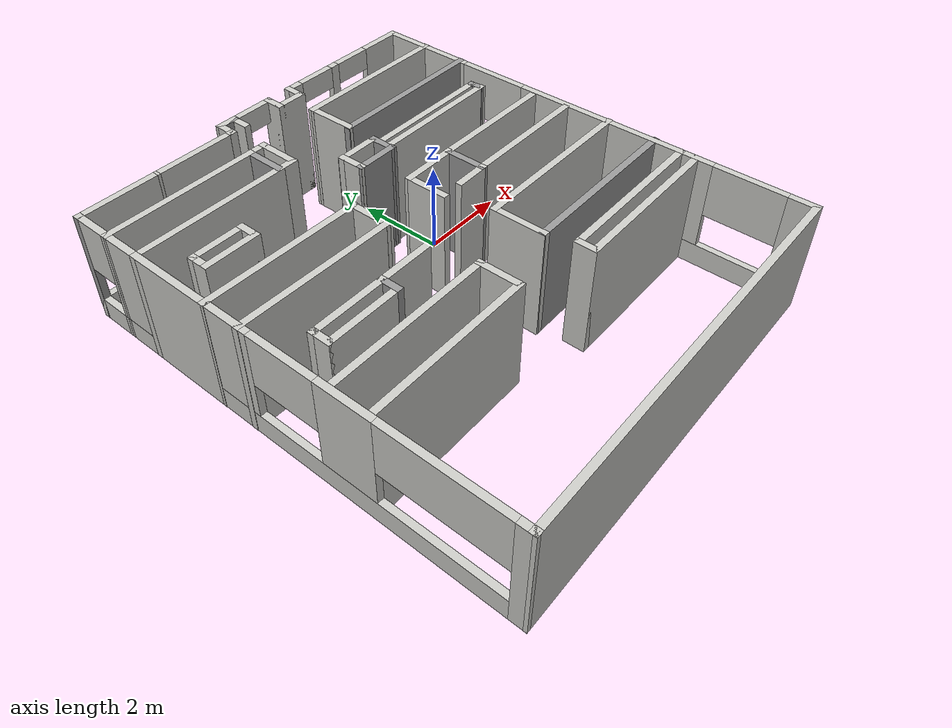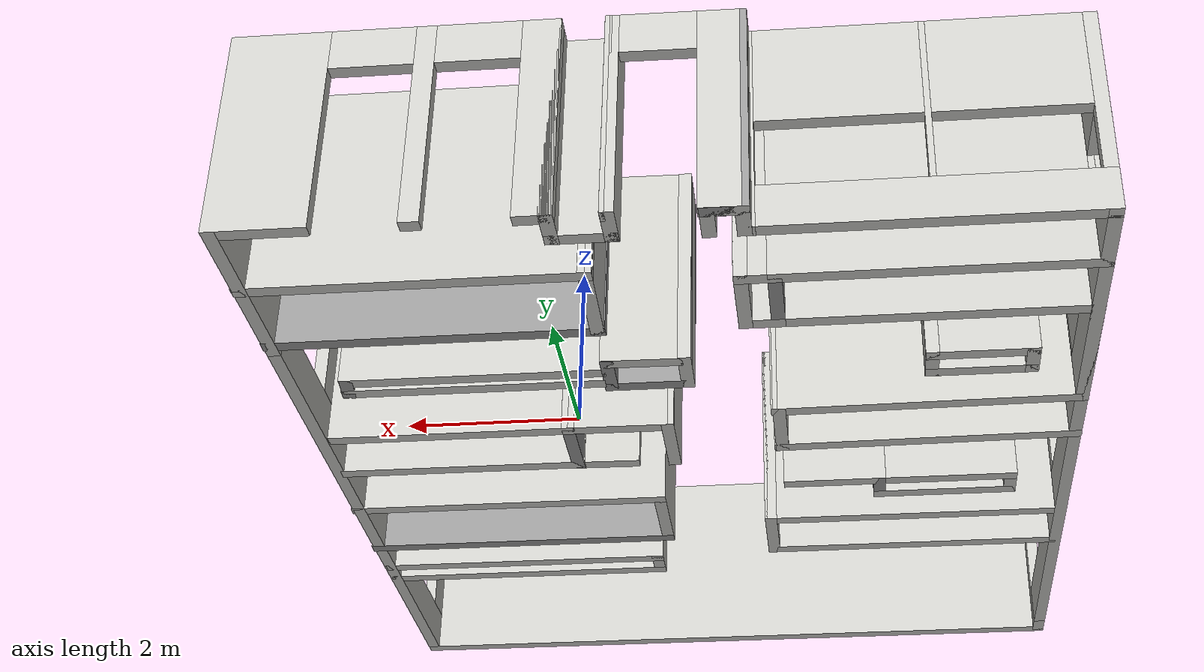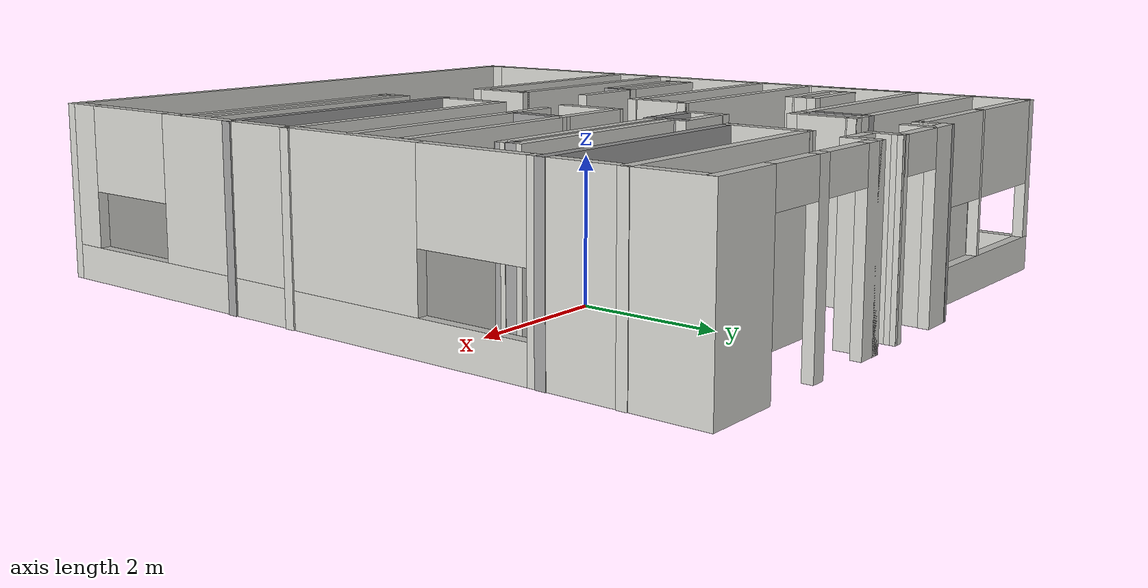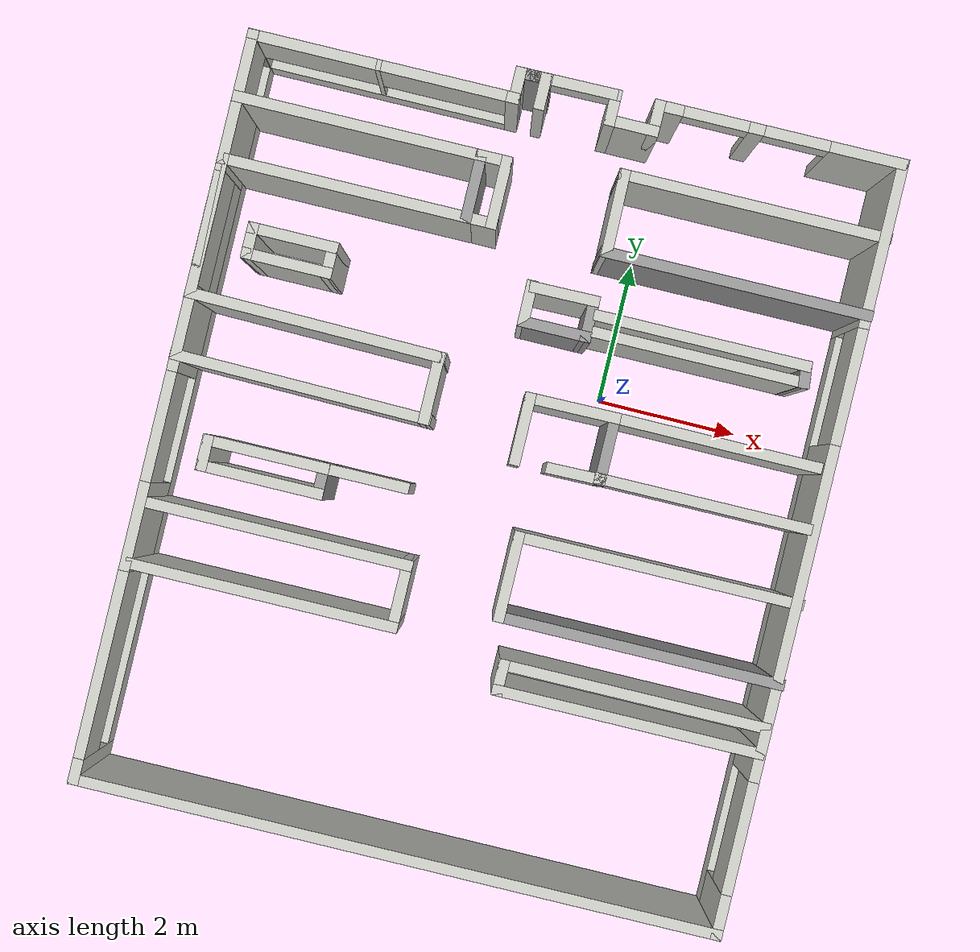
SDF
<?xml version='1.0'?>
<sdf version='1.7'>
  <model name='1CS_Floor_Plan'>
    <pose>-1.30751 -1.3658 0 0 -0 0</pose>
    <link name='Wall_101'>
      <collision name='Wall_101_Collision'>
        <geometry>
          <box>
            <size>1 0.15 2.5</size>
          </box>
        </geometry>
        <pose>0 0 1.25 0 -0 0</pose>
      </collision>
      <visual name='Wall_101_Visual'>
        <pose>0 0 1.25 0 -0 0</pose>
        <geometry>
          <box>
            <size>1 0.15 2.5</size>
          </box>
        </geometry>
        <material>
          <script>
            <uri>file://media/materials/scripts/gazebo.material</uri>
            <name>Gazebo/CeilingTiled</name>
          </script>
          <ambient>1 1 1 1</ambient>
        </material>
        <meta>
          <layer>0</layer>
        </meta>
      </visual>
      <pose>0.305969 0.663067 0 0 -0 1.5708</pose>
    </link>
    <link name='Wall_102'>
      <collision name='Wall_102_Collision'>
        <geometry>
          <box>
            <size>1.32004 0.15 2.5</size>
          </box>
        </geometry>
        <pose>0 0 1.25 0 -0 0</pose>
      </collision>
      <visual name='Wall_102_Visual'>
        <pose>0 0 1.25 0 -0 0</pose>
        <geometry>
          <box>
            <size>1.32004 0.15 2.5</size>
          </box>
        </geometry>
        <material>
          <script>
            <uri>file://media/materials/scripts/gazebo.material</uri>
            <name>Gazebo/CeilingTiled</name>
          </script>
          <ambient>1 1 1 1</ambient>
        </material>
        <meta>
          <layer>0</layer>
        </meta>
      </visual>
      <pose>0.890969 1.09307 0 0 -0 0.008547</pose>
    </link>
    <link name='Wall_103'>
      <collision name='Wall_103_Collision'>
        <geometry>
          <box>
            <size>1 0.15 2.5</size>
          </box>
        </geometry>
        <pose>0 0 1.25 0 -0 0</pose>
      </collision>
      <visual name='Wall_103_Visual'>
        <pose>0 0 1.25 0 -0 0</pose>
        <geometry>
          <box>
            <size>1 0.15 2.5</size>
          </box>
        </geometry>
        <material>
          <script>
            <uri>file://media/materials/scripts/gazebo.material</uri>
            <name>Gazebo/Grey</name>
          </script>
          <ambient>1 1 1 1</ambient>
        </material>
        <meta>
          <layer>0</layer>
        </meta>
      </visual>
      <pose>1.47597 0.673067 0 0 -0 -1.5708</pose>
    </link>
    <link name='Wall_104'>
      <collision name='Wall_104_Collision'>
        <geometry>
          <box>
            <size>0.820075 0.15 2.5</size>
          </box>
        </geometry>
        <pose>0 0 1.25 0 -0 0</pose>
      </collision>
      <visual name='Wall_104_Visual'>
        <pose>0 0 1.25 0 -0 0</pose>
        <geometry>
          <box>
            <size>0.820075 0.15 2.5</size>
          </box>
        </geometry>
        <material>
          <script>
            <uri>file://media/materials/scripts/gazebo.material</uri>
            <name>Gazebo/CeilingTiled</name>
          </script>
          <ambient>1 1 1 1</ambient>
        </material>
        <meta>
          <layer>0</layer>
        </meta>
      </visual>
      <pose>1.14097 0.243067 0 0 -0 -3.12667</pose>
    </link>
    <link name='Wall_106'>
      <collision name='Wall_106_Collision'>
        <geometry>
          <box>
            <size>2.93002 0.15 2.5</size>
          </box>
        </geometry>
        <pose>0 0 1.25 0 -0 0</pose>
      </collision>
      <visual name='Wall_106_Visual'>
        <pose>0 0 1.25 0 -0 0</pose>
        <geometry>
          <box>
            <size>2.93002 0.15 2.5</size>
          </box>
        </geometry>
        <material>
          <script>
            <uri>file://media/materials/scripts/gazebo.material</uri>
            <name>Gazebo/CeilingTiled</name>
          </script>
          <ambient>1 1 1 1</ambient>
        </material>
        <meta>
          <layer>0</layer>
        </meta>
      </visual>
      <pose>2.86597 1.09307 0 0 -0 -0.003597</pose>
    </link>
    <link name='Wall_108'>
      <collision name='Wall_108_Collision'>
        <geometry>
          <box>
            <size>3 0.15 2.5</size>
          </box>
        </geometry>
        <pose>0 0 1.25 0 -0 0</pose>
      </collision>
      <visual name='Wall_108_Visual'>
        <pose>0 0 1.25 0 -0 0</pose>
        <geometry>
          <box>
            <size>3 0.15 2.5</size>
          </box>
        </geometry>
        <material>
          <script>
            <uri>file://media/materials/scripts/gazebo.material</uri>
            <name>Gazebo/CeilingTiled</name>
          </script>
          <ambient>1 1 1 1</ambient>
        </material>
        <meta>
          <layer>0</layer>
        </meta>
      </visual>
      <pose>2.89097 0.258067 0 0 -0 0</pose>
    </link>
    <link name='Wall_110'>
      <collision name='Wall_110_Collision'>
        <geometry>
          <box>
            <size>4 0.15 2.5</size>
          </box>
        </geometry>
        <pose>0 0 1.25 0 -0 0</pose>
      </collision>
      <visual name='Wall_110_Visual'>
        <pose>0 0 1.25 0 -0 0</pose>
        <geometry>
          <box>
            <size>4 0.15 2.5</size>
          </box>
        </geometry>
        <material>
          <script>
            <uri>file://media/materials/scripts/gazebo.material</uri>
            <name>Gazebo/CeilingTiled</name>
          </script>
          <ambient>1 1 1 1</ambient>
        </material>
        <meta>
          <layer>0</layer>
        </meta>
      </visual>
      <pose>2.51875 -0.75019 0 0 -0 3.14159</pose>
    </link>
    <link name='Wall_111'>
      <collision name='Wall_111_Collision'>
        <geometry>
          <box>
            <size>1.25 0.15 2.5</size>
          </box>
        </geometry>
        <pose>0 0 1.25 0 -0 0</pose>
      </collision>
      <visual name='Wall_111_Visual'>
        <pose>0 0 1.25 0 -0 0</pose>
        <geometry>
          <box>
            <size>1.25 0.15 2.5</size>
          </box>
        </geometry>
        <material>
          <script>
            <uri>file://media/materials/scripts/gazebo.material</uri>
            <name>Gazebo/CeilingTiled</name>
          </script>
          <ambient>1 1 1 1</ambient>
        </material>
        <meta>
          <layer>0</layer>
        </meta>
      </visual>
      <pose>0.593745 -1.30019 0 0 -0 -1.5708</pose>
    </link>
    <link name='Wall_112'>
      <collision name='Wall_112_Collision'>
        <geometry>
          <box>
            <size>4 0.15 2.5</size>
          </box>
        </geometry>
        <pose>0 0 1.25 0 -0 0</pose>
      </collision>
      <visual name='Wall_112_Visual'>
        <pose>0 0 1.25 0 -0 0</pose>
        <geometry>
          <box>
            <size>4 0.15 2.5</size>
          </box>
        </geometry>
        <material>
          <script>
            <uri>file://media/materials/scripts/gazebo.material</uri>
            <name>Gazebo/Grey</name>
          </script>
          <ambient>1 1 1 1</ambient>
        </material>
        <meta>
          <layer>0</layer>
        </meta>
      </visual>
      <pose>2.51875 -1.85019 0 0 -0 0</pose>
    </link>
    <link name='Wall_114'>
      <collision name='Wall_114_Collision'>
        <geometry>
          <box>
            <size>3.75 0.15 2.5</size>
          </box>
        </geometry>
        <pose>0 0 1.25 0 -0 0</pose>
      </collision>
      <visual name='Wall_114_Visual'>
        <pose>0 0 1.25 0 -0 0</pose>
        <geometry>
          <box>
            <size>3.75 0.15 2.5</size>
          </box>
        </geometry>
        <material>
          <script>
            <uri>file://media/materials/scripts/gazebo.material</uri>
            <name>Gazebo/CeilingTiled</name>
          </script>
          <ambient>1 1 1 1</ambient>
        </material>
        <meta>
          <layer>0</layer>
        </meta>
      </visual>
      <pose>-2.56495 -1.47193 0 0 -0 0</pose>
    </link>
    <link name='Wall_115'>
      <collision name='Wall_115_Collision'>
        <geometry>
          <box>
            <size>1 0.15 2.5</size>
          </box>
        </geometry>
        <pose>0 0 1.25 0 -0 0</pose>
      </collision>
      <visual name='Wall_115_Visual'>
        <pose>0 0 1.25 0 -0 0</pose>
        <geometry>
          <box>
            <size>1 0.15 2.5</size>
          </box>
        </geometry>
        <material>
          <script>
            <uri>file://media/materials/scripts/gazebo.material</uri>
            <name>Gazebo/CeilingTiled</name>
          </script>
          <ambient>1 1 1 1</ambient>
        </material>
        <meta>
          <layer>0</layer>
        </meta>
      </visual>
      <pose>-0.76495 -1.89693 0 0 -0 -1.5708</pose>
    </link>
    <link name='Wall_116'>
      <collision name='Wall_116_Collision'>
        <geometry>
          <box>
            <size>3.75 0.15 2.5</size>
          </box>
        </geometry>
        <pose>0 0 1.25 0 -0 0</pose>
      </collision>
      <visual name='Wall_116_Visual'>
        <pose>0 0 1.25 0 -0 0</pose>
        <geometry>
          <box>
            <size>3.75 0.15 2.5</size>
          </box>
        </geometry>
        <material>
          <script>
            <uri>file://media/materials/scripts/gazebo.material</uri>
            <name>Gazebo/CeilingTiled</name>
          </script>
          <ambient>1 1 1 1</ambient>
        </material>
        <meta>
          <layer>0</layer>
        </meta>
      </visual>
      <pose>-2.56495 -2.32193 0 0 -0 3.14159</pose>
    </link>
    <link name='Wall_118'>
      <collision name='Wall_118_Collision'>
        <geometry>
          <box>
            <size>3.75 0.15 2.5</size>
          </box>
        </geometry>
        <pose>0 0 1.25 0 -0 0</pose>
      </collision>
      <visual name='Wall_118_Visual'>
        <pose>0 0 1.25 0 -0 0</pose>
        <geometry>
          <box>
            <size>3.75 0.15 2.5</size>
          </box>
        </geometry>
        <material>
          <script>
            <uri>file://media/materials/scripts/gazebo.material</uri>
            <name>Gazebo/CeilingTiled</name>
          </script>
          <ambient>1 1 1 1</ambient>
        </material>
        <meta>
          <layer>0</layer>
        </meta>
      </visual>
      <pose>2.60027 -2.46323 0 0 -0 3.14159</pose>
    </link>
    <link name='Wall_119'>
      <collision name='Wall_119_Collision'>
        <geometry>
          <box>
            <size>0.5 0.15 2.5</size>
          </box>
        </geometry>
        <pose>0 0 1.25 0 -0 0</pose>
      </collision>
      <visual name='Wall_119_Visual'>
        <pose>0 0 1.25 0 -0 0</pose>
        <geometry>
          <box>
            <size>0.5 0.15 2.5</size>
          </box>
        </geometry>
        <material>
          <script>
            <uri>file://media/materials/scripts/gazebo.material</uri>
            <name>Gazebo/CeilingTiled</name>
          </script>
          <ambient>1 1 1 1</ambient>
        </material>
        <meta>
          <layer>0</layer>
        </meta>
      </visual>
      <pose>0.800267 -2.63823 0 0 -0 -1.5708</pose>
    </link>
    <link name='Wall_120'>
      <collision name='Wall_120_Collision'>
        <geometry>
          <box>
            <size>3.75 0.15 2.5</size>
          </box>
        </geometry>
        <pose>0 0 1.25 0 -0 0</pose>
      </collision>
      <visual name='Wall_120_Visual'>
        <pose>0 0 1.25 0 -0 0</pose>
        <geometry>
          <box>
            <size>3.75 0.15 2.5</size>
          </box>
        </geometry>
        <material>
          <script>
            <uri>file://media/materials/scripts/gazebo.material</uri>
            <name>Gazebo/CeilingTiled</name>
          </script>
          <ambient>1 1 1 1</ambient>
        </material>
        <meta>
          <layer>0</layer>
        </meta>
      </visual>
      <pose>2.60027 -2.81323 0 0 -0 0</pose>
    </link>
    <link name='Wall_40'>
      <pose>-2.64261 4.93836 0 0 -0 3.14159</pose>
      <visual name='Wall_40_Visual_0'>
        <pose>-1.78422 0 1.25 0 -0 0</pose>
        <geometry>
          <box>
            <size>0.181561 0.15 2.5</size>
          </box>
        </geometry>
        <material>
          <script>
            <uri>file://media/materials/scripts/gazebo.material</uri>
            <name>Gazebo/CeilingTiled</name>
          </script>
          <ambient>1 1 1 1</ambient>
        </material>
        <meta>
          <layer>0</layer>
        </meta>
      </visual>
      <collision name='Wall_40_Collision_0'>
        <geometry>
          <box>
            <size>0.181561 0.15 2.5</size>
          </box>
        </geometry>
        <pose>-1.78422 0 1.25 0 -0 0</pose>
      </collision>
      <visual name='Wall_40_Visual_1'>
        <pose>0.09078 0 0.25 0 -0 0</pose>
        <geometry>
          <box>
            <size>3.56844 0.15 0.5</size>
          </box>
        </geometry>
        <material>
          <script>
            <uri>file://media/materials/scripts/gazebo.material</uri>
            <name>Gazebo/CeilingTiled</name>
          </script>
          <ambient>1 1 1 1</ambient>
        </material>
        <meta>
          <layer>0</layer>
        </meta>
      </visual>
      <collision name='Wall_40_Collision_1'>
        <geometry>
          <box>
            <size>3.56844 0.15 0.5</size>
          </box>
        </geometry>
        <pose>0.09078 0 0.25 0 -0 0</pose>
      </collision>
      <visual name='Wall_40_Visual_2'>
        <pose>0.066413 0 1.5 0 -0 0</pose>
        <geometry>
          <box>
            <size>0.065758 0.15 2</size>
          </box>
        </geometry>
        <material>
          <script>
            <uri>file://media/materials/scripts/gazebo.material</uri>
            <name>Gazebo/CeilingTiled</name>
          </script>
          <ambient>1 1 1 1</ambient>
        </material>
        <meta>
          <layer>0</layer>
        </meta>
      </visual>
      <collision name='Wall_40_Collision_2'>
        <geometry>
          <box>
            <size>0.065758 0.15 2</size>
          </box>
        </geometry>
        <pose>0.066413 0 1.5 0 -0 0</pose>
      </collision>
      <visual name='Wall_40_Visual_3'>
        <pose>1.79816 0 1.5 0 -0 0</pose>
        <geometry>
          <box>
            <size>0.153675 0.15 2</size>
          </box>
        </geometry>
        <material>
          <script>
            <uri>file://media/materials/scripts/gazebo.material</uri>
            <name>Gazebo/CeilingTiled</name>
          </script>
          <ambient>1 1 1 1</ambient>
        </material>
        <meta>
          <layer>0</layer>
        </meta>
      </visual>
      <collision name='Wall_40_Collision_3'>
        <geometry>
          <box>
            <size>0.153675 0.15 2</size>
          </box>
        </geometry>
        <pose>1.79816 0 1.5 0 -0 0</pose>
      </collision>
      <visual name='Wall_40_Visual_4'>
        <pose>-0.829952 0 1.9 0 -0 0</pose>
        <geometry>
          <box>
            <size>1.72697 0.15 1.2</size>
          </box>
        </geometry>
        <material>
          <script>
            <uri>file://media/materials/scripts/gazebo.material</uri>
            <name>Gazebo/CeilingTiled</name>
          </script>
          <ambient>1 1 1 1</ambient>
        </material>
        <meta>
          <layer>0</layer>
        </meta>
      </visual>
      <collision name='Wall_40_Collision_4'>
        <geometry>
          <box>
            <size>1.72697 0.15 1.2</size>
          </box>
        </geometry>
        <pose>-0.829952 0 1.9 0 -0 0</pose>
      </collision>
      <visual name='Wall_40_Visual_5'>
        <pose>0.910309 0 1.9 0 -0 0</pose>
        <geometry>
          <box>
            <size>1.62203 0.15 1.2</size>
          </box>
        </geometry>
        <material>
          <script>
            <uri>file://media/materials/scripts/gazebo.material</uri>
            <name>Gazebo/CeilingTiled</name>
          </script>
          <ambient>1 1 1 1</ambient>
        </material>
        <meta>
          <layer>0</layer>
        </meta>
      </visual>
      <collision name='Wall_40_Collision_5'>
        <geometry>
          <box>
            <size>1.62203 0.15 1.2</size>
          </box>
        </geometry>
        <pose>0.910309 0 1.9 0 -0 0</pose>
      </collision>
    </link>
    <link name='Wall_41'>
      <collision name='Wall_41_Collision'>
        <geometry>
          <box>
            <size>0.15 0.15 2.5</size>
          </box>
        </geometry>
        <pose>0 0 1.25 0 -0 0</pose>
      </collision>
      <visual name='Wall_41_Visual'>
        <pose>0 0 1.25 0 -0 0</pose>
        <geometry>
          <box>
            <size>0.15 0.15 2.5</size>
          </box>
        </geometry>
        <material>
          <script>
            <uri>file://media/materials/scripts/gazebo.material</uri>
            <name>Gazebo/Grey</name>
          </script>
          <ambient>1 1 1 1</ambient>
        </material>
        <meta>
          <layer>0</layer>
        </meta>
      </visual>
      <pose>-4.44261 4.93836 0 0 -0 0</pose>
    </link>
    <link name='Wall_43'>
      <pose>-4.44261 4.51336 0 0 -0 -1.5708</pose>
      <visual name='Wall_43_Visual_0'>
        <pose>-0.434855 0 1.25 0 -0 0</pose>
        <geometry>
          <box>
            <size>0.130289 0.15 2.5</size>
          </box>
        </geometry>
        <material>
          <script>
            <uri>file://media/materials/scripts/gazebo.material</uri>
            <name>Gazebo/CeilingTiled</name>
          </script>
          <ambient>1 1 1 1</ambient>
        </material>
        <meta>
          <layer>0</layer>
        </meta>
      </visual>
      <collision name='Wall_43_Collision_0'>
        <geometry>
          <box>
            <size>0.130289 0.15 2.5</size>
          </box>
        </geometry>
        <pose>-0.434855 0 1.25 0 -0 0</pose>
      </collision>
      <visual name='Wall_43_Visual_1'>
        <pose>0.065145 0 0.25 0 -0 0</pose>
        <geometry>
          <box>
            <size>0.869711 0.15 0.5</size>
          </box>
        </geometry>
        <material>
          <script>
            <uri>file://media/materials/scripts/gazebo.material</uri>
            <name>Gazebo/CeilingTiled</name>
          </script>
          <ambient>1 1 1 1</ambient>
        </material>
        <meta>
          <layer>0</layer>
        </meta>
      </visual>
      <collision name='Wall_43_Collision_1'>
        <geometry>
          <box>
            <size>0.869711 0.15 0.5</size>
          </box>
        </geometry>
        <pose>0.065145 0 0.25 0 -0 0</pose>
      </collision>
      <visual name='Wall_43_Visual_2'>
        <pose>0.465145 0 1.5 0 -0 0</pose>
        <geometry>
          <box>
            <size>0.069711 0.15 2</size>
          </box>
        </geometry>
        <material>
          <script>
            <uri>file://media/materials/scripts/gazebo.material</uri>
            <name>Gazebo/CeilingTiled</name>
          </script>
          <ambient>1 1 1 1</ambient>
        </material>
        <meta>
          <layer>0</layer>
        </meta>
      </visual>
      <collision name='Wall_43_Collision_2'>
        <geometry>
          <box>
            <size>0.069711 0.15 2</size>
          </box>
        </geometry>
        <pose>0.465145 0 1.5 0 -0 0</pose>
      </collision>
      <visual name='Wall_43_Visual_3'>
        <pose>0.030289 0 1.9 0 -0 0</pose>
        <geometry>
          <box>
            <size>0.8 0.15 1.2</size>
          </box>
        </geometry>
        <material>
          <script>
            <uri>file://media/materials/scripts/gazebo.material</uri>
            <name>Gazebo/CeilingTiled</name>
          </script>
          <ambient>1 1 1 1</ambient>
        </material>
        <meta>
          <layer>0</layer>
        </meta>
      </visual>
      <collision name='Wall_43_Collision_3'>
        <geometry>
          <box>
            <size>0.8 0.15 1.2</size>
          </box>
        </geometry>
        <pose>0.030289 0 1.9 0 -0 0</pose>
      </collision>
    </link>
    <link name='Wall_44'>
      <collision name='Wall_44_Collision'>
        <geometry>
          <box>
            <size>3.5 0.15 2.5</size>
          </box>
        </geometry>
        <pose>0 0 1.25 0 -0 0</pose>
      </collision>
      <visual name='Wall_44_Visual'>
        <pose>0 0 1.25 0 -0 0</pose>
        <geometry>
          <box>
            <size>3.5 0.15 2.5</size>
          </box>
        </geometry>
        <material>
          <script>
            <uri>file://media/materials/scripts/gazebo.material</uri>
            <name>Gazebo/CeilingTiled</name>
          </script>
          <ambient>1 1 1 1</ambient>
        </material>
        <meta>
          <layer>0</layer>
        </meta>
      </visual>
      <pose>-2.76761 4.08836 0 0 -0 0</pose>
    </link>
    <link name='Wall_45'>
      <collision name='Wall_45_Collision'>
        <geometry>
          <box>
            <size>1 0.15 2.5</size>
          </box>
        </geometry>
        <pose>0 0 1.25 0 -0 0</pose>
      </collision>
      <visual name='Wall_45_Visual'>
        <pose>0 0 1.25 0 -0 0</pose>
        <geometry>
          <box>
            <size>1 0.15 2.5</size>
          </box>
        </geometry>
        <material>
          <script>
            <uri>file://media/materials/scripts/gazebo.material</uri>
            <name>Gazebo/Grey</name>
          </script>
          <ambient>1 1 1 1</ambient>
        </material>
        <meta>
          <layer>0</layer>
        </meta>
      </visual>
      <pose>-1.09261 3.66336 0 0 -0 -1.5708</pose>
    </link>
    <link name='Wall_46'>
      <collision name='Wall_46_Collision'>
        <geometry>
          <box>
            <size>3.5 0.15 2.5</size>
          </box>
        </geometry>
        <pose>0 0 1.25 0 -0 0</pose>
      </collision>
      <visual name='Wall_46_Visual'>
        <pose>0 0 1.25 0 -0 0</pose>
        <geometry>
          <box>
            <size>3.5 0.15 2.5</size>
          </box>
        </geometry>
        <material>
          <script>
            <uri>file://media/materials/scripts/gazebo.material</uri>
            <name>Gazebo/CeilingTiled</name>
          </script>
          <ambient>1 1 1 1</ambient>
        </material>
        <meta>
          <layer>0</layer>
        </meta>
      </visual>
      <pose>-2.76761 3.23836 0 0 -0 3.14159</pose>
    </link>
    <link name='Wall_47'>
      <collision name='Wall_47_Collision'>
        <geometry>
          <box>
            <size>2 0.15 2.5</size>
          </box>
        </geometry>
        <pose>0 0 1.25 0 -0 0</pose>
      </collision>
      <visual name='Wall_47_Visual'>
        <pose>0 0 1.25 0 -0 0</pose>
        <geometry>
          <box>
            <size>2 0.15 2.5</size>
          </box>
        </geometry>
        <material>
          <script>
            <uri>file://media/materials/scripts/gazebo.material</uri>
            <name>Gazebo/CeilingTiled</name>
          </script>
          <ambient>1 1 1 1</ambient>
        </material>
        <meta>
          <layer>0</layer>
        </meta>
      </visual>
      <pose>-4.44261 2.31336 0 0 -0 -1.5708</pose>
    </link>
    <link name='Wall_48'>
      <collision name='Wall_48_Collision'>
        <geometry>
          <box>
            <size>3.60534 0.15 2.5</size>
          </box>
        </geometry>
        <pose>0 0 1.25 0 -0 0</pose>
      </collision>
      <visual name='Wall_48_Visual'>
        <pose>0 0 1.25 0 -0 0</pose>
        <geometry>
          <box>
            <size>3.60534 0.15 2.5</size>
          </box>
        </geometry>
        <material>
          <script>
            <uri>file://media/materials/scripts/gazebo.material</uri>
            <name>Gazebo/CeilingTiled</name>
          </script>
          <ambient>1 1 1 1</ambient>
        </material>
        <meta>
          <layer>0</layer>
        </meta>
      </visual>
      <pose>-2.71514 1.36213 0 0 -0 -0.015186</pose>
    </link>
    <link name='Wall_49'>
      <collision name='Wall_49_Collision'>
        <geometry>
          <box>
            <size>1 0.15 2.5</size>
          </box>
        </geometry>
        <pose>0 0 1.25 0 -0 0</pose>
      </collision>
      <visual name='Wall_49_Visual'>
        <pose>0 0 1.25 0 -0 0</pose>
        <geometry>
          <box>
            <size>1 0.15 2.5</size>
          </box>
        </geometry>
        <material>
          <script>
            <uri>file://media/materials/scripts/gazebo.material</uri>
            <name>Gazebo/CeilingTiled</name>
          </script>
          <ambient>1 1 1 1</ambient>
        </material>
        <meta>
          <layer>0</layer>
        </meta>
      </visual>
      <pose>-1.00516 0.91089 0 0 -0 -1.5708</pose>
    </link>
    <link name='Wall_50'>
      <collision name='Wall_50_Collision'>
        <geometry>
          <box>
            <size>3.60534 0.15 2.5</size>
          </box>
        </geometry>
        <pose>0 0 1.25 0 -0 0</pose>
      </collision>
      <visual name='Wall_50_Visual'>
        <pose>0 0 1.25 0 -0 0</pose>
        <geometry>
          <box>
            <size>3.60534 0.15 2.5</size>
          </box>
        </geometry>
        <material>
          <script>
            <uri>file://media/materials/scripts/gazebo.material</uri>
            <name>Gazebo/CeilingTiled</name>
          </script>
          <ambient>1 1 1 1</ambient>
        </material>
        <meta>
          <layer>0</layer>
        </meta>
      </visual>
      <pose>-2.71514 0.512125 0 0 -0 3.12641</pose>
    </link>
    <link name='Wall_52'>
      <collision name='Wall_52_Collision'>
        <geometry>
          <box>
            <size>0.5 0.15 2.5</size>
          </box>
        </geometry>
        <pose>0 0 1.25 0 -0 0</pose>
      </collision>
      <visual name='Wall_52_Visual'>
        <pose>0 0 1.25 0 -0 0</pose>
        <geometry>
          <box>
            <size>0.5 0.15 2.5</size>
          </box>
        </geometry>
        <material>
          <script>
            <uri>file://media/materials/scripts/gazebo.material</uri>
            <name>Gazebo/CeilingTiled</name>
          </script>
          <ambient>1 1 1 1</ambient>
        </material>
        <meta>
          <layer>0</layer>
        </meta>
      </visual>
      <pose>-0.917614 4.08836 0 0 -0 0</pose>
    </link>
    <link name='Wall_53'>
      <collision name='Wall_53_Collision'>
        <geometry>
          <box>
            <size>1 0.15 2.5</size>
          </box>
        </geometry>
        <pose>0 0 1.25 0 -0 0</pose>
      </collision>
      <visual name='Wall_53_Visual'>
        <pose>0 0 1.25 0 -0 0</pose>
        <geometry>
          <box>
            <size>1 0.15 2.5</size>
          </box>
        </geometry>
        <material>
          <script>
            <uri>file://media/materials/scripts/gazebo.material</uri>
            <name>Gazebo/CeilingTiled</name>
          </script>
          <ambient>1 1 1 1</ambient>
        </material>
        <meta>
          <layer>0</layer>
        </meta>
      </visual>
      <pose>-0.742614 3.66336 0 0 -0 -1.5708</pose>
    </link>
    <link name='Wall_54'>
      <collision name='Wall_54_Collision'>
        <geometry>
          <box>
            <size>0.5 0.15 2.5</size>
          </box>
        </geometry>
        <pose>0 0 1.25 0 -0 0</pose>
      </collision>
      <visual name='Wall_54_Visual'>
        <pose>0 0 1.25 0 -0 0</pose>
        <geometry>
          <box>
            <size>0.5 0.15 2.5</size>
          </box>
        </geometry>
        <material>
          <script>
            <uri>file://media/materials/scripts/gazebo.material</uri>
            <name>Gazebo/CeilingTiled</name>
          </script>
          <ambient>1 1 1 1</ambient>
        </material>
        <meta>
          <layer>0</layer>
        </meta>
      </visual>
      <pose>-0.917614 3.23836 0 0 -0 3.14159</pose>
    </link>
    <link name='Wall_56'>
      <collision name='Wall_56_Collision'>
        <geometry>
          <box>
            <size>0.5 0.15 2.5</size>
          </box>
        </geometry>
        <pose>0 0 1.25 0 -0 0</pose>
      </collision>
      <visual name='Wall_56_Visual'>
        <pose>0 0 1.25 0 -0 0</pose>
        <geometry>
          <box>
            <size>0.5 0.15 2.5</size>
          </box>
        </geometry>
        <material>
          <script>
            <uri>file://media/materials/scripts/gazebo.material</uri>
            <name>Gazebo/CeilingTiled</name>
          </script>
          <ambient>1 1 1 1</ambient>
        </material>
        <meta>
          <layer>0</layer>
        </meta>
      </visual>
      <pose>-0.842614 5.11336 0 0 -0 1.5708</pose>
    </link>
    <link name='Wall_57'>
      <collision name='Wall_57_Collision'>
        <geometry>
          <box>
            <size>0.5 0.15 2.5</size>
          </box>
        </geometry>
        <pose>0 0 1.25 0 -0 0</pose>
      </collision>
      <visual name='Wall_57_Visual'>
        <pose>0 0 1.25 0 -0 0</pose>
        <geometry>
          <box>
            <size>0.5 0.15 2.5</size>
          </box>
        </geometry>
        <material>
          <script>
            <uri>file://media/materials/scripts/gazebo.material</uri>
            <name>Gazebo/Grey</name>
          </script>
          <ambient>1 1 1 1</ambient>
        </material>
        <meta>
          <layer>0</layer>
        </meta>
      </visual>
      <pose>-0.667614 5.28836 0 0 -0 0</pose>
    </link>
    <link name='Wall_58'>
      <collision name='Wall_58_Collision'>
        <geometry>
          <box>
            <size>0.5 0.15 2.5</size>
          </box>
        </geometry>
        <pose>0 0 1.25 0 -0 0</pose>
      </collision>
      <visual name='Wall_58_Visual'>
        <pose>0 0 1.25 0 -0 0</pose>
        <geometry>
          <box>
            <size>0.5 0.15 2.5</size>
          </box>
        </geometry>
        <material>
          <script>
            <uri>file://media/materials/scripts/gazebo.material</uri>
            <name>Gazebo/CeilingTiled</name>
          </script>
          <ambient>1 1 1 1</ambient>
        </material>
        <meta>
          <layer>0</layer>
        </meta>
      </visual>
      <pose>-0.492614 5.11336 0 0 -0 -1.5708</pose>
    </link>
    <link name='Wall_60'>
      <pose>-0.185888 5.29404 0 0 -0 -3.13294</pose>
      <visual name='Wall_60_Visual_0'>
        <pose>-0.706498 0 1.25 0 -0 0</pose>
        <geometry>
          <box>
            <size>0.050505 0.15 2.5</size>
          </box>
        </geometry>
        <material>
          <script>
            <uri>file://media/materials/scripts/gazebo.material</uri>
            <name>Gazebo/CeilingTiled</name>
          </script>
          <ambient>1 1 1 1</ambient>
        </material>
        <meta>
          <layer>0</layer>
        </meta>
      </visual>
      <collision name='Wall_60_Collision_0'>
        <geometry>
          <box>
            <size>0.050505 0.15 2.5</size>
          </box>
        </geometry>
        <pose>-0.706498 0 1.25 0 -0 0</pose>
      </collision>
      <visual name='Wall_60_Visual_1'>
        <pose>0.475252 0 1.25 0 -0 0</pose>
        <geometry>
          <box>
            <size>0.512996 0.15 2.5</size>
          </box>
        </geometry>
        <material>
          <script>
            <uri>file://media/materials/scripts/gazebo.material</uri>
            <name>Gazebo/CeilingTiled</name>
          </script>
          <ambient>1 1 1 1</ambient>
        </material>
        <meta>
          <layer>0</layer>
        </meta>
      </visual>
      <collision name='Wall_60_Collision_1'>
        <geometry>
          <box>
            <size>0.512996 0.15 2.5</size>
          </box>
        </geometry>
        <pose>0.475252 0 1.25 0 -0 0</pose>
      </collision>
      <visual name='Wall_60_Visual_2'>
        <pose>-0.231246 0 2.25 0 -0 0</pose>
        <geometry>
          <box>
            <size>0.9 0.15 0.5</size>
          </box>
        </geometry>
        <material>
          <script>
            <uri>file://media/materials/scripts/gazebo.material</uri>
            <name>Gazebo/CeilingTiled</name>
          </script>
          <ambient>1 1 1 1</ambient>
        </material>
        <meta>
          <layer>0</layer>
        </meta>
      </visual>
      <collision name='Wall_60_Collision_2'>
        <geometry>
          <box>
            <size>0.9 0.15 0.5</size>
          </box>
        </geometry>
        <pose>-0.231246 0 2.25 0 -0 0</pose>
      </collision>
    </link>
    <link name='Wall_62'>
      <collision name='Wall_62_Collision'>
        <geometry>
          <box>
            <size>0.5 0.15 2.5</size>
          </box>
        </geometry>
        <pose>0 0 1.25 0 -0 0</pose>
      </collision>
      <visual name='Wall_62_Visual'>
        <pose>0 0 1.25 0 -0 0</pose>
        <geometry>
          <box>
            <size>0.5 0.15 2.5</size>
          </box>
        </geometry>
        <material>
          <script>
            <uri>file://media/materials/scripts/gazebo.material</uri>
            <name>Gazebo/CeilingTiled</name>
          </script>
          <ambient>1 1 1 1</ambient>
        </material>
        <meta>
          <layer>0</layer>
        </meta>
      </visual>
      <pose>0.470837 5.12473 0 0 -0 -1.5708</pose>
    </link>
    <link name='Wall_63'>
      <collision name='Wall_63_Collision'>
        <geometry>
          <box>
            <size>0.75 0.15 2.5</size>
          </box>
        </geometry>
        <pose>0 0 1.25 0 -0 0</pose>
      </collision>
      <visual name='Wall_63_Visual'>
        <pose>0 0 1.25 0 -0 0</pose>
        <geometry>
          <box>
            <size>0.75 0.15 2.5</size>
          </box>
        </geometry>
        <material>
          <script>
            <uri>file://media/materials/scripts/gazebo.material</uri>
            <name>Gazebo/CeilingTiled</name>
          </script>
          <ambient>1 1 1 1</ambient>
        </material>
        <meta>
          <layer>0</layer>
        </meta>
      </visual>
      <pose>0.770837 4.94973 0 0 -0 0</pose>
    </link>
    <link name='Wall_64'>
      <collision name='Wall_64_Collision'>
        <geometry>
          <box>
            <size>0.5 0.15 2.5</size>
          </box>
        </geometry>
        <pose>0 0 1.25 0 -0 0</pose>
      </collision>
      <visual name='Wall_64_Visual'>
        <pose>0 0 1.25 0 -0 0</pose>
        <geometry>
          <box>
            <size>0.5 0.15 2.5</size>
          </box>
        </geometry>
        <material>
          <script>
            <uri>file://media/materials/scripts/gazebo.material</uri>
            <name>Gazebo/CeilingTiled</name>
          </script>
          <ambient>1 1 1 1</ambient>
        </material>
        <meta>
          <layer>0</layer>
        </meta>
      </visual>
      <pose>1.07084 5.12473 0 0 -0 1.5708</pose>
    </link>
    <link name='Wall_65'>
      <pose>2.74584 5.29973 0 0 -0 0</pose>
      <visual name='Wall_65_Visual_0'>
        <pose>-1.54535 0 1.25 0 -0 0</pose>
        <geometry>
          <box>
            <size>0.409304 0.15 2.5</size>
          </box>
        </geometry>
        <material>
          <script>
            <uri>file://media/materials/scripts/gazebo.material</uri>
            <name>Gazebo/CeilingTiled</name>
          </script>
          <ambient>1 1 1 1</ambient>
        </material>
        <meta>
          <layer>0</layer>
        </meta>
      </visual>
      <collision name='Wall_65_Collision_0'>
        <geometry>
          <box>
            <size>0.409304 0.15 2.5</size>
          </box>
        </geometry>
        <pose>-1.54535 0 1.25 0 -0 0</pose>
      </collision>
      <visual name='Wall_65_Visual_1'>
        <pose>-0.332946 0 1.25 0 -0 0</pose>
        <geometry>
          <box>
            <size>0.2155 0.15 2.5</size>
          </box>
        </geometry>
        <material>
          <script>
            <uri>file://media/materials/scripts/gazebo.material</uri>
            <name>Gazebo/CeilingTiled</name>
          </script>
          <ambient>1 1 1 1</ambient>
        </material>
        <meta>
          <layer>0</layer>
        </meta>
      </visual>
      <collision name='Wall_65_Collision_1'>
        <geometry>
          <box>
            <size>0.2155 0.15 2.5</size>
          </box>
        </geometry>
        <pose>-0.332946 0 1.25 0 -0 0</pose>
      </collision>
      <visual name='Wall_65_Visual_2'>
        <pose>1.2124 0 1.25 0 -0 0</pose>
        <geometry>
          <box>
            <size>1.0752 0.15 2.5</size>
          </box>
        </geometry>
        <material>
          <script>
            <uri>file://media/materials/scripts/gazebo.material</uri>
            <name>Gazebo/CeilingTiled</name>
          </script>
          <ambient>1 1 1 1</ambient>
        </material>
        <meta>
          <layer>0</layer>
        </meta>
      </visual>
      <collision name='Wall_65_Collision_2'>
        <geometry>
          <box>
            <size>1.0752 0.15 2.5</size>
          </box>
        </geometry>
        <pose>1.2124 0 1.25 0 -0 0</pose>
      </collision>
      <visual name='Wall_65_Visual_3'>
        <pose>-0.890696 0 2.25 0 -0 0</pose>
        <geometry>
          <box>
            <size>0.9 0.15 0.5</size>
          </box>
        </geometry>
        <material>
          <script>
            <uri>file://media/materials/scripts/gazebo.material</uri>
            <name>Gazebo/CeilingTiled</name>
          </script>
          <ambient>1 1 1 1</ambient>
        </material>
        <meta>
          <layer>0</layer>
        </meta>
      </visual>
      <collision name='Wall_65_Collision_3'>
        <geometry>
          <box>
            <size>0.9 0.15 0.5</size>
          </box>
        </geometry>
        <pose>-0.890696 0 2.25 0 -0 0</pose>
      </collision>
      <visual name='Wall_65_Visual_4'>
        <pose>0.224804 0 2.25 0 -0 0</pose>
        <geometry>
          <box>
            <size>0.9 0.15 0.5</size>
          </box>
        </geometry>
        <material>
          <script>
            <uri>file://media/materials/scripts/gazebo.material</uri>
            <name>Gazebo/CeilingTiled</name>
          </script>
          <ambient>1 1 1 1</ambient>
        </material>
        <meta>
          <layer>0</layer>
        </meta>
      </visual>
      <collision name='Wall_65_Collision_4'>
        <geometry>
          <box>
            <size>0.9 0.15 0.5</size>
          </box>
        </geometry>
        <pose>0.224804 0 2.25 0 -0 0</pose>
      </collision>
    </link>
    <link name='Wall_66'>
      <pose>4.42084 -0.00027 0 0 -0 -1.5708</pose>
      <visual name='Wall_66_Visual_0'>
        <pose>-4.20716 0 1.25 0 -0 0</pose>
        <geometry>
          <box>
            <size>2.33567 0.15 2.5</size>
          </box>
        </geometry>
        <material>
          <script>
            <uri>file://media/materials/scripts/gazebo.material</uri>
            <name>Gazebo/CeilingTiled</name>
          </script>
          <ambient>1 1 1 1</ambient>
        </material>
        <meta>
          <layer>0</layer>
        </meta>
      </visual>
      <collision name='Wall_66_Collision_0'>
        <geometry>
          <box>
            <size>2.33567 0.15 2.5</size>
          </box>
        </geometry>
        <pose>-4.20716 0 1.25 0 -0 0</pose>
      </collision>
      <visual name='Wall_66_Visual_1'>
        <pose>1.16784 0 0.25 0 -0 0</pose>
        <geometry>
          <box>
            <size>8.41433 0.15 0.5</size>
          </box>
        </geometry>
        <material>
          <script>
            <uri>file://media/materials/scripts/gazebo.material</uri>
            <name>Gazebo/CeilingTiled</name>
          </script>
          <ambient>1 1 1 1</ambient>
        </material>
        <meta>
          <layer>0</layer>
        </meta>
      </visual>
      <collision name='Wall_66_Collision_1'>
        <geometry>
          <box>
            <size>8.41433 0.15 0.5</size>
          </box>
        </geometry>
        <pose>1.16784 0 0.25 0 -0 0</pose>
      </collision>
      <visual name='Wall_66_Visual_2'>
        <pose>0.88492 0 1.5 0 -0 0</pose>
        <geometry>
          <box>
            <size>4.63941 0.15 2</size>
          </box>
        </geometry>
        <material>
          <script>
            <uri>file://media/materials/scripts/gazebo.material</uri>
            <name>Gazebo/CeilingTiled</name>
          </script>
          <ambient>1 1 1 1</ambient>
        </material>
        <meta>
          <layer>0</layer>
        </meta>
      </visual>
      <collision name='Wall_66_Collision_2'>
        <geometry>
          <box>
            <size>4.63941 0.15 2</size>
          </box>
        </geometry>
        <pose>0.88492 0 1.5 0 -0 0</pose>
      </collision>
      <visual name='Wall_66_Visual_3'>
        <pose>5.06585 0 1.5 0 -0 0</pose>
        <geometry>
          <box>
            <size>0.618303 0.15 2</size>
          </box>
        </geometry>
        <material>
          <script>
            <uri>file://media/materials/scripts/gazebo.material</uri>
            <name>Gazebo/CeilingTiled</name>
          </script>
          <ambient>1 1 1 1</ambient>
        </material>
        <meta>
          <layer>0</layer>
        </meta>
      </visual>
      <collision name='Wall_66_Collision_3'>
        <geometry>
          <box>
            <size>0.618303 0.15 2</size>
          </box>
        </geometry>
        <pose>5.06585 0 1.5 0 -0 0</pose>
      </collision>
      <visual name='Wall_66_Visual_4'>
        <pose>-2.23706 0 1.9 0 -0 0</pose>
        <geometry>
          <box>
            <size>1.60454 0.15 1.2</size>
          </box>
        </geometry>
        <material>
          <script>
            <uri>file://media/materials/scripts/gazebo.material</uri>
            <name>Gazebo/CeilingTiled</name>
          </script>
          <ambient>1 1 1 1</ambient>
        </material>
        <meta>
          <layer>0</layer>
        </meta>
      </visual>
      <collision name='Wall_66_Collision_4'>
        <geometry>
          <box>
            <size>1.60454 0.15 1.2</size>
          </box>
        </geometry>
        <pose>-2.23706 0 1.9 0 -0 0</pose>
      </collision>
      <visual name='Wall_66_Visual_5'>
        <pose>3.98066 0 1.9 0 -0 0</pose>
        <geometry>
          <box>
            <size>1.55207 0.15 1.2</size>
          </box>
        </geometry>
        <material>
          <script>
            <uri>file://media/materials/scripts/gazebo.material</uri>
            <name>Gazebo/CeilingTiled</name>
          </script>
          <ambient>1 1 1 1</ambient>
        </material>
        <meta>
          <layer>0</layer>
        </meta>
      </visual>
      <collision name='Wall_66_Collision_5'>
        <geometry>
          <box>
            <size>1.55207 0.15 1.2</size>
          </box>
        </geometry>
        <pose>3.98066 0 1.9 0 -0 0</pose>
      </collision>
    </link>
    <link name='Wall_67'>
      <collision name='Wall_67_Collision'>
        <geometry>
          <box>
            <size>9 0.15 2.5</size>
          </box>
        </geometry>
        <pose>0 0 1.25 0 -0 0</pose>
      </collision>
      <visual name='Wall_67_Visual'>
        <pose>0 0 1.25 0 -0 0</pose>
        <geometry>
          <box>
            <size>9 0.15 2.5</size>
          </box>
        </geometry>
        <material>
          <script>
            <uri>file://media/materials/scripts/gazebo.material</uri>
            <name>Gazebo/CeilingTiled</name>
          </script>
          <ambient>1 1 1 1</ambient>
        </material>
        <meta>
          <layer>0</layer>
        </meta>
      </visual>
      <pose>-0.004163 -5.30027 0 0 -0 3.14159</pose>
    </link>
    <link name='Wall_68'>
      <pose>-4.43589 -0.605955 0 0 -0 1.57223</pose>
      <visual name='Wall_68_Visual_0'>
        <pose>-4.59135 0 1.25 0 -0 0</pose>
        <geometry>
          <box>
            <size>0.355936 0.15 2.5</size>
          </box>
        </geometry>
        <material>
          <script>
            <uri>file://media/materials/scripts/gazebo.material</uri>
            <name>Gazebo/CeilingTiled</name>
          </script>
          <ambient>1 1 1 1</ambient>
        </material>
        <meta>
          <layer>0</layer>
        </meta>
      </visual>
      <collision name='Wall_68_Collision_0'>
        <geometry>
          <box>
            <size>0.355936 0.15 2.5</size>
          </box>
        </geometry>
        <pose>-4.59135 0 1.25 0 -0 0</pose>
      </collision>
      <visual name='Wall_68_Visual_1'>
        <pose>0.177968 0 0.25 0 -0 0</pose>
        <geometry>
          <box>
            <size>9.1827 0.15 0.5</size>
          </box>
        </geometry>
        <material>
          <script>
            <uri>file://media/materials/scripts/gazebo.material</uri>
            <name>Gazebo/CeilingTiled</name>
          </script>
          <ambient>1 1 1 1</ambient>
        </material>
        <meta>
          <layer>0</layer>
        </meta>
      </visual>
      <collision name='Wall_68_Collision_1'>
        <geometry>
          <box>
            <size>9.1827 0.15 0.5</size>
          </box>
        </geometry>
        <pose>0.177968 0 0.25 0 -0 0</pose>
      </collision>
      <visual name='Wall_68_Visual_2'>
        <pose>-1.21487 0 1.5 0 -0 0</pose>
        <geometry>
          <box>
            <size>1.22901 0.15 2</size>
          </box>
        </geometry>
        <material>
          <script>
            <uri>file://media/materials/scripts/gazebo.material</uri>
            <name>Gazebo/CeilingTiled</name>
          </script>
          <ambient>1 1 1 1</ambient>
        </material>
        <meta>
          <layer>0</layer>
        </meta>
      </visual>
      <collision name='Wall_68_Collision_2'>
        <geometry>
          <box>
            <size>1.22901 0.15 2</size>
          </box>
        </geometry>
        <pose>-1.21487 0 1.5 0 -0 0</pose>
      </collision>
      <visual name='Wall_68_Visual_3'>
        <pose>1.51152 0 1.5 0 -0 0</pose>
        <geometry>
          <box>
            <size>1.18974 0.15 2</size>
          </box>
        </geometry>
        <material>
          <script>
            <uri>file://media/materials/scripts/gazebo.material</uri>
            <name>Gazebo/CeilingTiled</name>
          </script>
          <ambient>1 1 1 1</ambient>
        </material>
        <meta>
          <layer>0</layer>
        </meta>
      </visual>
      <collision name='Wall_68_Collision_3'>
        <geometry>
          <box>
            <size>1.18974 0.15 2</size>
          </box>
        </geometry>
        <pose>1.51152 0 1.5 0 -0 0</pose>
      </collision>
      <visual name='Wall_68_Visual_4'>
        <pose>4.22043 0 1.5 0 -0 0</pose>
        <geometry>
          <box>
            <size>1.09777 0.15 2</size>
          </box>
        </geometry>
        <material>
          <script>
            <uri>file://media/materials/scripts/gazebo.material</uri>
            <name>Gazebo/CeilingTiled</name>
          </script>
          <ambient>1 1 1 1</ambient>
        </material>
        <meta>
          <layer>0</layer>
        </meta>
      </visual>
      <collision name='Wall_68_Collision_4'>
        <geometry>
          <box>
            <size>1.09777 0.15 2</size>
          </box>
        </geometry>
        <pose>4.22043 0 1.5 0 -0 0</pose>
      </collision>
      <visual name='Wall_68_Visual_5'>
        <pose>-3.12138 0 1.9 0 -0 0</pose>
        <geometry>
          <box>
            <size>2.58401 0.15 1.2</size>
          </box>
        </geometry>
        <material>
          <script>
            <uri>file://media/materials/scripts/gazebo.material</uri>
            <name>Gazebo/CeilingTiled</name>
          </script>
          <ambient>1 1 1 1</ambient>
        </material>
        <meta>
          <layer>0</layer>
        </meta>
      </visual>
      <collision name='Wall_68_Collision_5'>
        <geometry>
          <box>
            <size>2.58401 0.15 1.2</size>
          </box>
        </geometry>
        <pose>-3.12138 0 1.9 0 -0 0</pose>
      </collision>
      <visual name='Wall_68_Visual_6'>
        <pose>0.158143 0 1.9 0 -0 0</pose>
        <geometry>
          <box>
            <size>1.51702 0.15 1.2</size>
          </box>
        </geometry>
        <material>
          <script>
            <uri>file://media/materials/scripts/gazebo.material</uri>
            <name>Gazebo/CeilingTiled</name>
          </script>
          <ambient>1 1 1 1</ambient>
        </material>
        <meta>
          <layer>0</layer>
        </meta>
      </visual>
      <collision name='Wall_68_Collision_6'>
        <geometry>
          <box>
            <size>1.51702 0.15 1.2</size>
          </box>
        </geometry>
        <pose>0.158143 0 1.9 0 -0 0</pose>
      </collision>
      <visual name='Wall_68_Visual_7'>
        <pose>2.88897 0 1.9 0 -0 0</pose>
        <geometry>
          <box>
            <size>1.56515 0.15 1.2</size>
          </box>
        </geometry>
        <material>
          <script>
            <uri>file://media/materials/scripts/gazebo.material</uri>
            <name>Gazebo/CeilingTiled</name>
          </script>
          <ambient>1 1 1 1</ambient>
        </material>
        <meta>
          <layer>0</layer>
        </meta>
      </visual>
      <collision name='Wall_68_Collision_7'>
        <geometry>
          <box>
            <size>1.56515 0.15 1.2</size>
          </box>
        </geometry>
        <pose>2.88897 0 1.9 0 -0 0</pose>
      </collision>
    </link>
    <link name='Wall_70'>
      <collision name='Wall_70_Collision'>
        <geometry>
          <box>
            <size>3.75 0.15 2.5</size>
          </box>
        </geometry>
        <pose>0 0 1.25 0 -0 0</pose>
      </collision>
      <visual name='Wall_70_Visual'>
        <pose>0 0 1.25 0 -0 0</pose>
        <geometry>
          <box>
            <size>3.75 0.15 2.5</size>
          </box>
        </geometry>
        <material>
          <script>
            <uri>file://media/materials/scripts/gazebo.material</uri>
            <name>Gazebo/CeilingTiled</name>
          </script>
          <ambient>1 1 1 1</ambient>
        </material>
        <meta>
          <layer>0</layer>
        </meta>
      </visual>
      <pose>2.63107 4.28775 0 0 -0 3.14159</pose>
    </link>
    <link name='Wall_71'>
      <collision name='Wall_71_Collision'>
        <geometry>
          <box>
            <size>1.21454 0.15 2.5</size>
          </box>
        </geometry>
        <pose>0 0 1.25 0 -0 0</pose>
      </collision>
      <visual name='Wall_71_Visual'>
        <pose>0 0 1.25 0 -0 0</pose>
        <geometry>
          <box>
            <size>1.21454 0.15 2.5</size>
          </box>
        </geometry>
        <material>
          <script>
            <uri>file://media/materials/scripts/gazebo.material</uri>
            <name>Gazebo/CeilingTiled</name>
          </script>
          <ambient>1 1 1 1</ambient>
        </material>
        <meta>
          <layer>0</layer>
        </meta>
      </visual>
      <pose>0.838525 3.75558 0 0 -0 -1.55678</pose>
    </link>
    <link name='Wall_72'>
      <collision name='Wall_72_Collision'>
        <geometry>
          <box>
            <size>3.75 0.15 2.5</size>
          </box>
        </geometry>
        <pose>0 0 1.25 0 -0 0</pose>
      </collision>
      <visual name='Wall_72_Visual'>
        <pose>0 0 1.25 0 -0 0</pose>
        <geometry>
          <box>
            <size>3.75 0.15 2.5</size>
          </box>
        </geometry>
        <material>
          <script>
            <uri>file://media/materials/scripts/gazebo.material</uri>
            <name>Gazebo/Grey</name>
          </script>
          <ambient>1 1 1 1</ambient>
        </material>
        <meta>
          <layer>0</layer>
        </meta>
      </visual>
      <pose>2.63107 3.2234 0 0 -0 0</pose>
    </link>
    <link name='Wall_74'>
      <collision name='Wall_74_Collision'>
        <geometry>
          <box>
            <size>0.640408 0.15 2.5</size>
          </box>
        </geometry>
        <pose>0 0 1.25 0 -0 0</pose>
      </collision>
      <visual name='Wall_74_Visual'>
        <pose>0 0 1.25 0 -0 0</pose>
        <geometry>
          <box>
            <size>0.640408 0.15 2.5</size>
          </box>
        </geometry>
        <material>
          <script>
            <uri>file://media/materials/scripts/gazebo.material</uri>
            <name>Gazebo/CeilingTiled</name>
          </script>
          <ambient>1 1 1 1</ambient>
        </material>
        <meta>
          <layer>0</layer>
        </meta>
      </visual>
      <pose>-0.02438 2.30588 0 0 -0 -1.56254</pose>
    </link>
    <link name='Wall_75'>
      <collision name='Wall_75_Collision'>
        <geometry>
          <box>
            <size>1.01 0.15 2.5</size>
          </box>
        </geometry>
        <pose>0 0 1.25 0 -0 0</pose>
      </collision>
      <visual name='Wall_75_Visual'>
        <pose>0 0 1.25 0 -0 0</pose>
        <geometry>
          <box>
            <size>1.01 0.15 2.5</size>
          </box>
        </geometry>
        <material>
          <script>
            <uri>file://media/materials/scripts/gazebo.material</uri>
            <name>Gazebo/Grey</name>
          </script>
          <ambient>1 1 1 1</ambient>
        </material>
        <meta>
          <layer>0</layer>
        </meta>
      </visual>
      <pose>0.407643 2.06069 0 0 -0 0</pose>
    </link>
    <link name='Wall_80'>
      <collision name='Wall_80_Collision'>
        <geometry>
          <box>
            <size>0.367028 0.15 2.5</size>
          </box>
        </geometry>
        <pose>0 0 1.25 0 -0 0</pose>
      </collision>
      <visual name='Wall_80_Visual'>
        <pose>0 0 1.25 0 -0 0</pose>
        <geometry>
          <box>
            <size>0.367028 0.15 2.5</size>
          </box>
        </geometry>
        <material>
          <script>
            <uri>file://media/materials/scripts/gazebo.material</uri>
            <name>Gazebo/Grey</name>
          </script>
          <ambient>1 1 1 1</ambient>
        </material>
        <meta>
          <layer>0</layer>
        </meta>
      </visual>
      <pose>3.80889 2.25576 0 0 -0 -1.45574</pose>
    </link>
    <link name='Wall_81'>
      <collision name='Wall_81_Collision'>
        <geometry>
          <box>
            <size>3 0.15 2.5</size>
          </box>
        </geometry>
        <pose>0 0 1.25 0 -0 0</pose>
      </collision>
      <visual name='Wall_81_Visual'>
        <pose>0 0 1.25 0 -0 0</pose>
        <geometry>
          <box>
            <size>3 0.15 2.5</size>
          </box>
        </geometry>
        <material>
          <script>
            <uri>file://media/materials/scripts/gazebo.material</uri>
            <name>Gazebo/CeilingTiled</name>
          </script>
          <ambient>1 1 1 1</ambient>
        </material>
        <meta>
          <layer>0</layer>
        </meta>
      </visual>
      <pose>2.39634 2.14796 0 0 -0 3.14159</pose>
    </link>
    <link name='Wall_83'>
      <collision name='Wall_83_Collision'>
        <geometry>
          <box>
            <size>3 0.15 2.5</size>
          </box>
        </geometry>
        <pose>0 0 1.25 0 -0 0</pose>
      </collision>
      <visual name='Wall_83_Visual'>
        <pose>0 0 1.25 0 -0 0</pose>
        <geometry>
          <box>
            <size>3 0.15 2.5</size>
          </box>
        </geometry>
        <material>
          <script>
            <uri>file://media/materials/scripts/gazebo.material</uri>
            <name>Gazebo/CeilingTiled</name>
          </script>
          <ambient>1 1 1 1</ambient>
        </material>
        <meta>
          <layer>0</layer>
        </meta>
      </visual>
      <pose>2.37143 2.37356 0 0 -0 0</pose>
    </link>
    <link name='Wall_86'>
      <collision name='Wall_86_Collision'>
        <geometry>
          <box>
            <size>1.01052 0.15 2.5</size>
          </box>
        </geometry>
        <pose>0 0 1.25 0 -0 0</pose>
      </collision>
      <visual name='Wall_86_Visual'>
        <pose>0 0 1.25 0 -0 0</pose>
        <geometry>
          <box>
            <size>1.01052 0.15 2.5</size>
          </box>
        </geometry>
        <material>
          <script>
            <uri>file://media/materials/scripts/gazebo.material</uri>
            <name>Gazebo/CeilingTiled</name>
          </script>
          <ambient>1 1 1 1</ambient>
        </material>
        <meta>
          <layer>0</layer>
        </meta>
      </visual>
      <pose>0.403596 2.54608 0 0 -0 0.011627</pose>
    </link>
    <link name='Wall_87'>
      <collision name='Wall_87_Collision'>
        <geometry>
          <box>
            <size>0.630408 0.15 2.5</size>
          </box>
        </geometry>
        <pose>0 0 1.25 0 -0 0</pose>
      </collision>
      <visual name='Wall_87_Visual'>
        <pose>0 0 1.25 0 -0 0</pose>
        <geometry>
          <box>
            <size>0.630408 0.15 2.5</size>
          </box>
        </geometry>
        <material>
          <script>
            <uri>file://media/materials/scripts/gazebo.material</uri>
            <name>Gazebo/Grey</name>
          </script>
          <ambient>1 1 1 1</ambient>
        </material>
        <meta>
          <layer>0</layer>
        </meta>
      </visual>
      <pose>0.83562 2.30089 0 0 -0 -1.56237</pose>
    </link>
    <link name='Wall_89'>
      <collision name='Wall_89_Collision'>
        <geometry>
          <box>
            <size>0.5 0.15 2.5</size>
          </box>
        </geometry>
        <pose>0 0 1.25 0 -0 0</pose>
      </collision>
      <visual name='Wall_89_Visual'>
        <pose>0 0 1.25 0 -0 0</pose>
        <geometry>
          <box>
            <size>0.5 0.15 2.5</size>
          </box>
        </geometry>
        <material>
          <script>
            <uri>file://media/materials/scripts/gazebo.material</uri>
            <name>Gazebo/CeilingTiled</name>
          </script>
          <ambient>1 1 1 1</ambient>
        </material>
        <meta>
          <layer>0</layer>
        </meta>
      </visual>
      <pose>-3.83403 2.25307 0 0 -0 -1.5708</pose>
    </link>
    <link name='Wall_90'>
      <collision name='Wall_90_Collision'>
        <geometry>
          <box>
            <size>1.25 0.15 2.5</size>
          </box>
        </geometry>
        <pose>0 0 1.25 0 -0 0</pose>
      </collision>
      <visual name='Wall_90_Visual'>
        <pose>0 0 1.25 0 -0 0</pose>
        <geometry>
          <box>
            <size>1.25 0.15 2.5</size>
          </box>
        </geometry>
        <material>
          <script>
            <uri>file://media/materials/scripts/gazebo.material</uri>
            <name>Gazebo/CeilingTiled</name>
          </script>
          <ambient>1 1 1 1</ambient>
        </material>
        <meta>
          <layer>0</layer>
        </meta>
      </visual>
      <pose>-3.28403 2.07807 0 0 -0 0</pose>
    </link>
    <link name='Wall_91'>
      <collision name='Wall_91_Collision'>
        <geometry>
          <box>
            <size>0.5 0.15 2.5</size>
          </box>
        </geometry>
        <pose>0 0 1.25 0 -0 0</pose>
      </collision>
      <visual name='Wall_91_Visual'>
        <pose>0 0 1.25 0 -0 0</pose>
        <geometry>
          <box>
            <size>0.5 0.15 2.5</size>
          </box>
        </geometry>
        <material>
          <script>
            <uri>file://media/materials/scripts/gazebo.material</uri>
            <name>Gazebo/CeilingTiled</name>
          </script>
          <ambient>1 1 1 1</ambient>
        </material>
        <meta>
          <layer>0</layer>
        </meta>
      </visual>
      <pose>-2.73403 2.25307 0 0 -0 1.5708</pose>
    </link>
    <link name='Wall_92'>
      <collision name='Wall_92_Collision'>
        <geometry>
          <box>
            <size>1.25 0.15 2.5</size>
          </box>
        </geometry>
        <pose>0 0 1.25 0 -0 0</pose>
      </collision>
      <visual name='Wall_92_Visual'>
        <pose>0 0 1.25 0 -0 0</pose>
        <geometry>
          <box>
            <size>1.25 0.15 2.5</size>
          </box>
        </geometry>
        <material>
          <script>
            <uri>file://media/materials/scripts/gazebo.material</uri>
            <name>Gazebo/CeilingTiled</name>
          </script>
          <ambient>1 1 1 1</ambient>
        </material>
        <meta>
          <layer>0</layer>
        </meta>
      </visual>
      <pose>-3.28403 2.42807 0 0 -0 3.14159</pose>
    </link>
    <link name='Wall_94'>
      <collision name='Wall_94_Collision'>
        <geometry>
          <box>
            <size>0.5 0.15 2.5</size>
          </box>
        </geometry>
        <pose>0 0 1.25 0 -0 0</pose>
      </collision>
      <visual name='Wall_94_Visual'>
        <pose>0 0 1.25 0 -0 0</pose>
        <geometry>
          <box>
            <size>0.5 0.15 2.5</size>
          </box>
        </geometry>
        <material>
          <script>
            <uri>file://media/materials/scripts/gazebo.material</uri>
            <name>Gazebo/CeilingTiled</name>
          </script>
          <ambient>1 1 1 1</ambient>
        </material>
        <meta>
          <layer>0</layer>
        </meta>
      </visual>
      <pose>-3.75403 -0.646933 0 0 -0 -1.5708</pose>
    </link>
    <link name='Wall_95'>
      <collision name='Wall_95_Collision'>
        <geometry>
          <box>
            <size>1.75 0.15 2.5</size>
          </box>
        </geometry>
        <pose>0 0 1.25 0 -0 0</pose>
      </collision>
      <visual name='Wall_95_Visual'>
        <pose>0 0 1.25 0 -0 0</pose>
        <geometry>
          <box>
            <size>1.75 0.15 2.5</size>
          </box>
        </geometry>
        <material>
          <script>
            <uri>file://media/materials/scripts/gazebo.material</uri>
            <name>Gazebo/CeilingTiled</name>
          </script>
          <ambient>1 1 1 1</ambient>
        </material>
        <meta>
          <layer>0</layer>
        </meta>
      </visual>
      <pose>-2.95403 -0.821933 0 0 -0 0</pose>
    </link>
    <link name='Wall_96'>
      <collision name='Wall_96_Collision'>
        <geometry>
          <box>
            <size>0.5 0.15 2.5</size>
          </box>
        </geometry>
        <pose>0 0 1.25 0 -0 0</pose>
      </collision>
      <visual name='Wall_96_Visual'>
        <pose>0 0 1.25 0 -0 0</pose>
        <geometry>
          <box>
            <size>0.5 0.15 2.5</size>
          </box>
        </geometry>
        <material>
          <script>
            <uri>file://media/materials/scripts/gazebo.material</uri>
            <name>Gazebo/Grey</name>
          </script>
          <ambient>1 1 1 1</ambient>
        </material>
        <meta>
          <layer>0</layer>
        </meta>
      </visual>
      <pose>-2.15403 -0.646933 0 0 -0 1.5708</pose>
    </link>
    <link name='Wall_97'>
      <collision name='Wall_97_Collision'>
        <geometry>
          <box>
            <size>1.75 0.15 2.5</size>
          </box>
        </geometry>
        <pose>0 0 1.25 0 -0 0</pose>
      </collision>
      <visual name='Wall_97_Visual'>
        <pose>0 0 1.25 0 -0 0</pose>
        <geometry>
          <box>
            <size>1.75 0.15 2.5</size>
          </box>
        </geometry>
        <material>
          <script>
            <uri>file://media/materials/scripts/gazebo.material</uri>
            <name>Gazebo/CeilingTiled</name>
          </script>
          <ambient>1 1 1 1</ambient>
        </material>
        <meta>
          <layer>0</layer>
        </meta>
      </visual>
      <pose>-2.95403 -0.471933 0 0 -0 3.14159</pose>
    </link>
    <link name='Wall_99'>
      <collision name='Wall_99_Collision'>
        <geometry>
          <box>
            <size>1.25 0.15 2.5</size>
          </box>
        </geometry>
        <pose>0 0 1.25 0 -0 0</pose>
      </collision>
      <visual name='Wall_99_Visual'>
        <pose>0 0 1.25 0 -0 0</pose>
        <geometry>
          <box>
            <size>1.25 0.15 2.5</size>
          </box>
        </geometry>
        <material>
          <script>
            <uri>file://media/materials/scripts/gazebo.material</uri>
            <name>Gazebo/CeilingTiled</name>
          </script>
          <ambient>1 1 1 1</ambient>
        </material>
        <meta>
          <layer>0</layer>
        </meta>
      </visual>
      <pose>-1.60403 -0.471933 0 0 -0 0</pose>
    </link>
    <static>1</static>
  </model>
</sdf>
